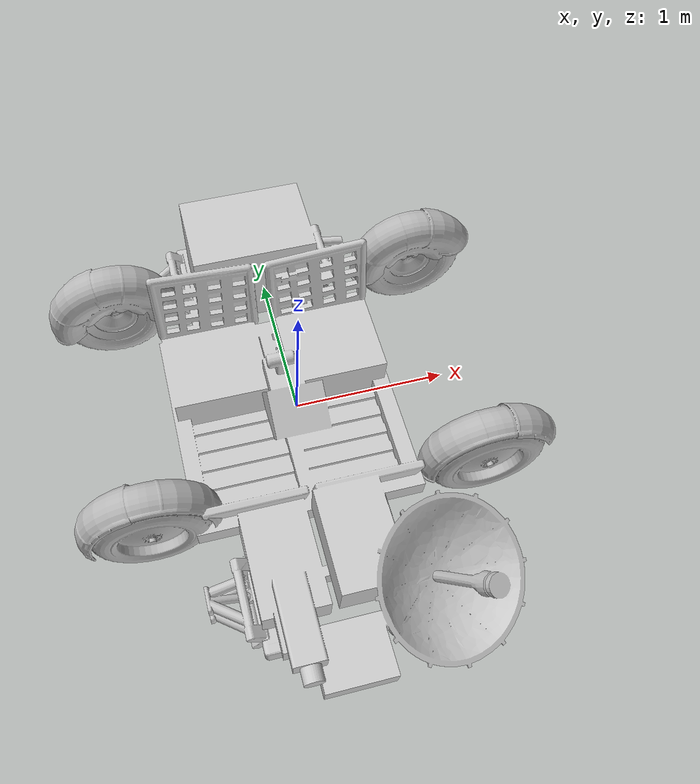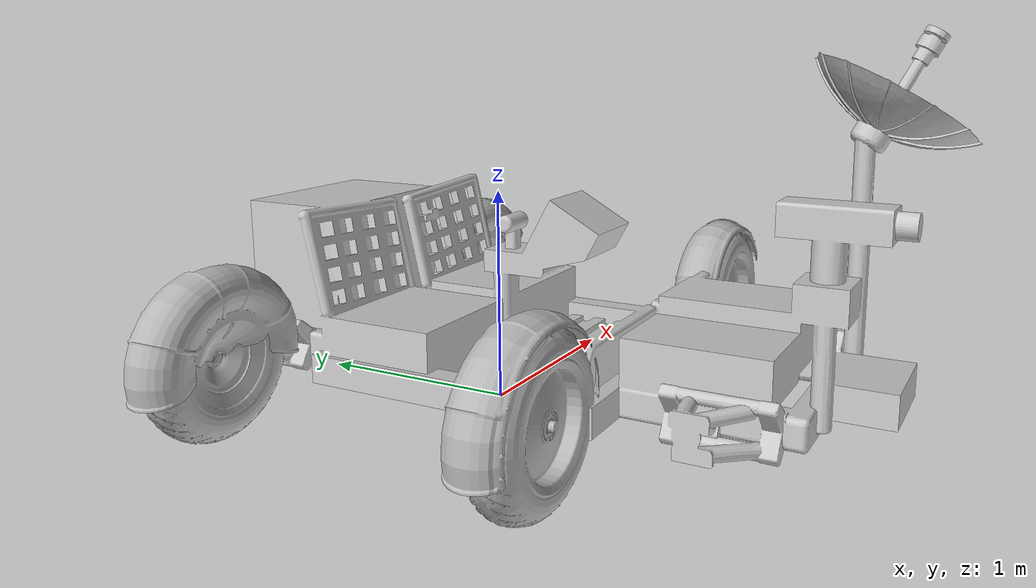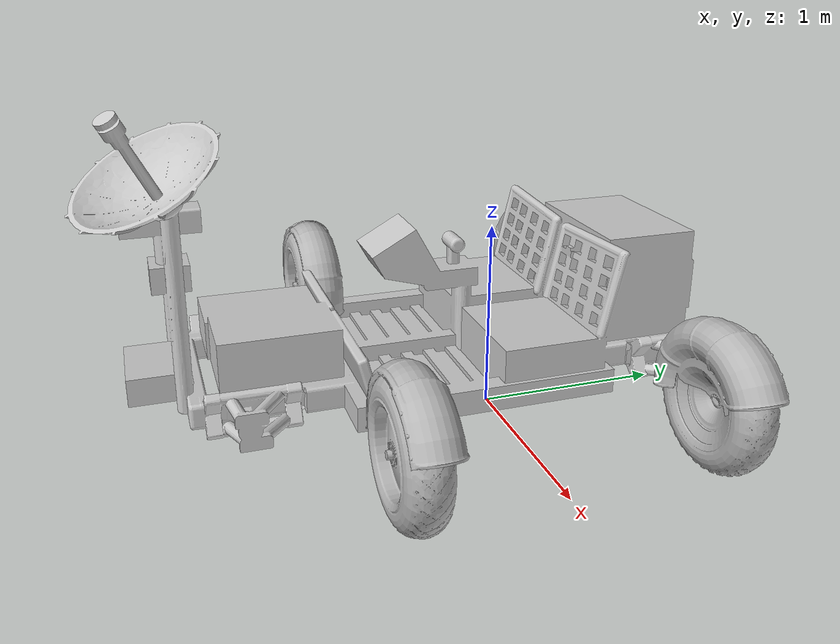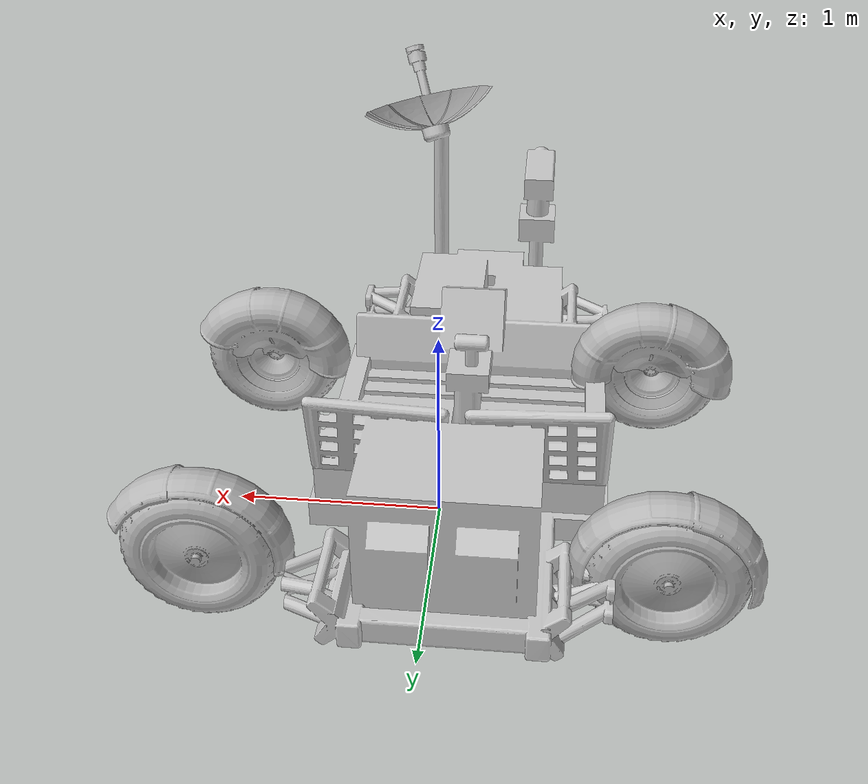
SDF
<?xml version="1.0" ?>
<sdf version='1.9'>
  <model name="lunar_roving_vehicle">
            <static>false</static>

            <!-- Chassis -->
            <link name='chassis'>
                <pose relative_to='__model__'>0 0 0 0 0 0</pose>
                <inertial> <!--inertial properties of the link mass, inertia matix-->
                    <mass>210.0</mass>
                </inertial>
                <visual name="visual">
                    <geometry>
                        <mesh>
                        <uri>model://lunar_roving_vehicle/meshes/lunar_roving_vehicle.dae</uri>
                        <scale>1.0 1.0 1.0</scale>
                        </mesh>
                    </geometry>
                </visual>
                <collision name='collision'>
                    <pose>0 0 0.43 0 0 0</pose>
                    <geometry>
                        <box>
                            <size>2.06 1.46 0.05</size>
                        </box>
                    </geometry>

                </collision>
                <sensor type="camera" name="camera_handheld">
                    <pose relative_to='__model__'>0.18 -0.196 1.23 0 0 0</pose>
                    <visualize>1</visualize>
                    <update_rate>10.0</update_rate>
                    <camera>
                        <image>
                            <width>800</width>
                            <height>800</height>
                        </image>
                        <clip>
                            <near>0.01</near>
                            <far>100</far>
                        </clip>
                    </camera>
                    <always_on>1</always_on>
                    <topic>img_raw_handheld</topic>
                </sensor>

                <sensor type="camera" name="camera_front">
                    <pose relative_to='__model__'>1.46 -0.278 1.005 0 0 0</pose>
                    <visualize>1</visualize>
                    <update_rate>10.0</update_rate>
                    <camera>
                        <image>
                            <width>800</width>
                            <height>800</height>
                        </image>
                        <clip>
                            <near>0.01</near>
                            <far>100</far>
                        </clip>
                    </camera>
                    <always_on>1</always_on>
                    <topic>img_raw_front</topic>
                </sensor>

                <sensor name="imu_sensor" type="imu">
                    <always_on>1</always_on>
                    <update_rate>1</update_rate>
                    <visualize>true</visualize>
                    <topic>imu</topic>
                </sensor>
            </link>

            <!-- Left Rear Wheel Rotator -->
            <link name='left_rear_steer'>
                <pose relative_to="chassis">-1.05 0.73 0.53 0 0 0</pose> <!--angles are in radian-->
                <inertial>
                    <mass>1</mass>
                </inertial>
                <visual name="visual">
                    <geometry>
                        <mesh>
                            <uri>model://lunar_roving_vehicle/meshes/wheel_cover_L_B.dae</uri>
                            <scale>1.0 1.0 1.0</scale>
                        </mesh>
                    </geometry>
                </visual>
            </link>

            <!-- Left Rear Suspension-->
            <link name='left_rear_suspension'>
                <pose relative_to="left_rear_steer">0.006 0 -0.14 0 0 0</pose> <!--angles are in radian-->
                <inertial>
                    <mass>1</mass>
                </inertial>
            </link>

            <!-- Left Rear Wheel -->
            <link name='left_rear_wheel'>
                <pose relative_to="left_rear_suspension">0 0.03 0 0 0 0</pose> <!--angles are in radian-->
                <inertial>
                    <mass>1</mass>
                </inertial>
                <visual name='visual'>
                    <geometry>
                        <mesh>
                        <uri>model://lunar_roving_vehicle/meshes/wheel_left.dae</uri>
                        <scale>1.0 1.0 1.0</scale>
                        </mesh>
                    </geometry>
                </visual>
                <collision name='collision'>
                    <pose>0 0 0 1.5708 0 0</pose>
                    <geometry>
                        <cylinder>
                            <radius>0.358</radius>
                            <length>0.218</length>
                        </cylinder>
                    </geometry>
                </collision>
            </link>

             <!-- Right Rear Wheel Rotator -->
            <link name='right_rear_steer'>
                <pose relative_to="chassis">-1.05 -0.73 0.53 0 0 0</pose> <!--angles are in radian-->
                <inertial>
                    <mass>1</mass>
                </inertial>
                <visual name="visual">
                    <geometry>
                        <mesh>
                            <uri>model://lunar_roving_vehicle/meshes/wheel_cover_R_B.dae</uri>
                            <scale>1.0 1.0 1.0</scale>
                        </mesh>
                    </geometry>
                </visual>
            </link>

            <!-- Right Rear Suspension-->
            <link name='right_rear_suspension'>
                <pose relative_to="right_rear_steer">0.006 0 -0.14 0 0 0</pose> <!--angles are in radian-->
                <inertial>
                    <mass>1</mass>
                </inertial>
            </link>

            <!-- Right Rear Wheel -->
            <link name='right_rear_wheel'>
                <pose relative_to="right_rear_suspension">0 -0.03 0 0 0 0</pose> <!--angles are in radian-->
                <inertial>
                    <mass>1</mass>
                </inertial>
                <visual name='visual'>
                    <geometry>
                        <mesh>
                        <uri>model://lunar_roving_vehicle/meshes/wheel_right.dae</uri>
                        <scale>1.0 1.0 1.0</scale>
                        </mesh>
                    </geometry>
                </visual>
                <collision name='collision'>
                    <pose>0 0 0 1.5708 0 0</pose>
                    <geometry>
                        <cylinder>
                            <radius>0.358</radius>
                            <length>0.218</length>
                        </cylinder>
                    </geometry>
                </collision>
            </link>

            <!-- Left Front Wheel Rotator -->
            <link name='left_front_steer'>
                <pose relative_to="chassis">0.95 0.73 0.53 0 0 0</pose> <!--angles are in radian-->
                <inertial>
                    <mass>1</mass>
                </inertial>
                <visual name="visual">
                    <geometry>
                        <mesh>
                            <uri>model://lunar_roving_vehicle/meshes/wheel_cover_L_F.dae</uri>
                            <scale>1.0 1.0 1.0</scale>
                        </mesh>
                    </geometry>
                </visual>
            </link>

            <!-- Left Front Suspension-->
            <link name='left_front_suspension'>
                <pose relative_to="left_front_steer">0.01 0 -0.16 0 0 0</pose> <!--angles are in radian-->
                <inertial>
                    <mass>1</mass>
                </inertial>
            </link>

            <!-- Left Front Wheel -->
            <link name='left_front_wheel'>
                <pose relative_to="left_front_suspension">0 0.03  0 0 0 0</pose> <!--angles are in radian-->
                <inertial>
                    <mass>1</mass>
                </inertial>
                <visual name='visual'>
                   <geometry>
                        <mesh>
                        <uri>model://lunar_roving_vehicle/meshes/wheel_left.dae</uri>
                        <scale>1.0 1.0 1.0</scale>
                        </mesh>
                    </geometry>
                </visual>
                <collision name='collision'>
                    <pose>0 0 0 1.5708 0 0</pose>
                    <geometry>
                        <cylinder>
                            <radius>0.358</radius>
                            <length>0.218</length>
                        </cylinder>
                    </geometry>
                </collision>
            </link>

            <!-- Right Front Wheel Rotator -->
            <link name='right_front_steer'>
                <pose relative_to="chassis">0.95 -0.73 0.53 0 0 0</pose> <!--angles are in radian-->
                <inertial>
                    <mass>1</mass>
                </inertial>
                <visual name="visual">
                    <geometry>
                        <mesh>
                            <uri>model://lunar_roving_vehicle/meshes/wheel_cover_R_F.dae</uri>
                            <scale>1.0 1.0 1.0</scale>
                        </mesh>
                    </geometry>
                </visual>
            </link>

            <!-- Right Front Suspension-->
            <link name='right_front_suspension'>
                <pose relative_to="right_front_steer">0.01 0 -0.16 0 0 0</pose> <!--angles are in radian-->
                <inertial>
                    <mass>1</mass>
                </inertial>
            </link>

            <!-- Right Front Wheel -->
            <link name='right_front_wheel'>
                <pose relative_to="right_front_suspension">0 -0.03 0 0 0 0</pose> <!--angles are in radian-->
                <inertial>
                    <mass>1</mass>
                </inertial>
                <visual name='visual'>
                    <geometry>
                        <mesh>
                        <uri>model://lunar_roving_vehicle/meshes/wheel_right.dae</uri>
                        <scale>1.0 1.0 1.0</scale>
                        </mesh>
                    </geometry>
                </visual>
                <collision name='collision'>
                    <pose>0 0 0 1.5708 0 0</pose>
                    <geometry>
                        <cylinder>
                            <radius>0.358</radius>
                            <length>0.218</length>
                        </cylinder>
                    </geometry>
                </collision>
            </link>

            <joint name='left_front_steer_joint' type='revolute'>
                <pose relative_to='left_front_steer'/>
                <parent>chassis</parent>
                <child>left_front_steer</child>
                <axis>
                    <xyz expressed_in='__model__'>0 0 1</xyz> <!--can be descired to any frame or even arbitrary frames-->
                    <limit>
                        <lower>-0.925025</lower>    <!--negative infinity-->
                        <upper>0.925025</upper>     <!--positive infinity-->
                        <effort>1000</effort>
                    </limit>
                </axis>

            </joint>

            <!-- Left Front Suspension Joint-->
            <joint name='left_front_suspension_joint' type='prismatic'>
                <pose relative_to='left_front_suspension'/>
                <parent>left_front_steer</parent>
                <child>left_front_suspension</child>
                <axis>
                    <xyz expressed_in='__model__'>0 0 1</xyz>
                    <limit>
                        <lower>-0.1</lower>
                        <upper>0.0</upper>
                    </limit>
                </axis>
            </joint>

            <!-- Left Front Wheel Joint -->
            <joint name='left_front_wheel_joint' type='revolute'>
                <pose relative_to='left_front_wheel'/>
                <parent>left_front_suspension</parent>
                <child>left_front_wheel</child>
                <axis>
                    <xyz expressed_in='__model__'>0 1 0</xyz> <!--can be descired to any frame or even arbitrary frames-->
                    <limit>
                        <lower>-1.79769e+308</lower>    <!--negative infinity-->
                        <upper>1.79769e+308</upper>     <!--positive infinity-->
                    </limit>
                </axis>
            </joint>

            <!-- Right Front Steer Joint -->
            <joint name='right_front_steer_joint' type='revolute'>
                <pose relative_to='right_front_steer'/>
                <parent>chassis</parent>
                <child>right_front_steer</child>
                <axis>
                    <xyz expressed_in='__model__'>0 0 1</xyz>
                    <limit>
                        <lower>-0.925025</lower>    <!--negative infinity-->
                        <upper>0.925025</upper>     <!--positive infinity-->
                        <effort>1000</effort>
                    </limit>
                </axis>
            </joint>

            <!-- Right Front Suspension Joint-->
            <joint name='right_front_suspension_joint' type='prismatic'>
                <pose relative_to='right_front_suspension'/>
                <parent>right_front_steer</parent>
                <child>right_front_suspension</child>
                <axis>
                    <xyz expressed_in='__model__'>0 0 1</xyz>
                    <limit>
                        <lower>-0.1</lower>
                        <upper>0.0</upper>
                    </limit>
                </axis>
            </joint>

            <!-- Right Front Wheel Joint -->
            <joint name='right_front_wheel_joint' type='revolute'>
                <pose relative_to='right_front_wheel'/>
                <parent>right_front_suspension</parent>
                <child>right_front_wheel</child>
                <axis>
                    <xyz expressed_in='__model__'>0 1 0</xyz>
                    <limit>
                        <lower>-1.79769e+308</lower>    <!--negative infinity-->
                        <upper>1.79769e+308</upper>     <!--positive infinity-->
                    </limit>
                </axis>
            </joint>

            <!-- Left Rear Steer Joint -->
            <joint name='left_rear_steer_joint' type='revolute'>
                <pose relative_to='left_rear_steer'/>
                <parent>chassis</parent>
                <child>left_rear_steer</child>
                <axis>
                    <xyz expressed_in='__model__'>0 0 1</xyz>
                    <limit>
                        <lower>-0.0001</lower>    <!--negative infinity-->
                        <upper>0.0001</upper>     <!--positive infinity-->
                    </limit>
                </axis>
            </joint>

            <!-- Left Rear Suspension Joint -->
            <joint name='left_rear_suspension_joint' type='prismatic'>
                <pose relative_to='left_rear_suspension'/>
                <parent>left_rear_steer</parent>
                <child>left_rear_suspension</child>
                <axis>
                    <xyz expressed_in='__model__'>0 0 1</xyz>
                    <limit>
                        <lower>-0.1</lower>
                        <upper>0.0</upper>
                    </limit>
                </axis>
            </joint>

            <!-- Left Rear Wheel Joint -->
            <joint name='left_rear_wheel_joint' type='revolute'>
                <pose relative_to='left_rear_wheel'/>
                <parent>left_rear_suspension</parent>
                <child>left_rear_wheel</child>
                <axis>
                    <xyz expressed_in='__model__'>0 1 0</xyz>
                    <limit>
                        <lower>-1.79769e+308</lower>    <!--negative infinity-->
                        <upper>1.79769e+308</upper>     <!--positive infinity-->
                    </limit>
                </axis>

            </joint>

            <!-- Right Rear Steer Joint -->
            <joint name='right_rear_steer_joint' type='revolute'>
                <pose relative_to='right_rear_steer'/>
                <parent>chassis</parent>
                <child>right_rear_steer</child>
                <axis>
                    <xyz expressed_in='__model__'>0 0 1</xyz>
                    <limit>
                        <lower>-0.0001</lower>    <!--negative infinity-->
                        <upper>0.0001</upper>     <!--positive infinity-->
                    </limit>
                </axis>
            </joint>

            <!-- Right Rear Suspension Joint -->
            <joint name='right_rear_suspension_joint' type='prismatic'>
                <pose relative_to='right_rear_suspension'/>
                <parent>right_rear_steer</parent>
                <child>right_rear_suspension</child>
                <axis>
                    <xyz expressed_in='__model__'>0 0 1</xyz>
                    <limit>
                        <lower>-0.1</lower>
                        <upper>0.0</upper>
                    </limit>
                </axis>
            </joint>

            <!-- Right Rear Wheel Joint -->
            <joint name='right_rear_wheel_joint' type='revolute'>
                <pose relative_to='right_rear_wheel'/>
                <parent>right_rear_suspension</parent>
                <child>right_rear_wheel</child>
                <axis>
                    <xyz expressed_in='__model__'>0 1 0</xyz>
                    <limit>
                        <lower>-1.79769e+308</lower>    <!--negative infinity-->
                        <upper>1.79769e+308</upper>     <!--positive infinity-->
                    </limit>
                </axis>
            </joint>

            <!-- Plugin for Ackermann Steering-->
            <plugin
                filename="gz-sim-ackermann-steering-system"
                name="gz::sim::systems::AckermannSteering">
                <left_joint>left_rear_wheel_joint</left_joint>
                <right_joint>right_rear_wheel_joint</right_joint>
                <left_joint>left_front_wheel_joint</left_joint>
                <right_joint>right_front_wheel_joint</right_joint> <!-- Actual LRV has front and back Ackermann but the plugin does not support. Maybe TODO-->
                <left_steering_joint>left_front_steer_joint</left_steering_joint>
                <right_steering_joint>right_front_steer_joint</right_steering_joint>
                <kingpin_width>1.46</kingpin_width>
                <wheel_base>2.1</wheel_base>
                <wheel_separation>1.46</wheel_separation>
                <wheel_radius>0.358</wheel_radius>
                <steering_limit>0.74424871</steering_limit> <!-- asin(wheelbase/turningradius) (2.1, 3,1) -->
                <min_velocity>-3.61</min_velocity>
                <max_velocity>3.61</max_velocity> <!-- Actual max speed of LRV (13km/h)-->
                <topic>cmd_vel</topic>
                <odom_publish_frequency> 10 </odom_publish_frequency>
            </plugin>

  </model>
</sdf>
